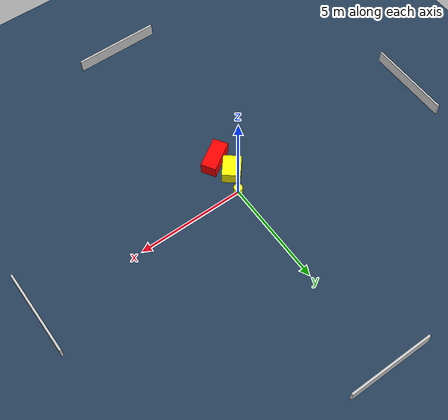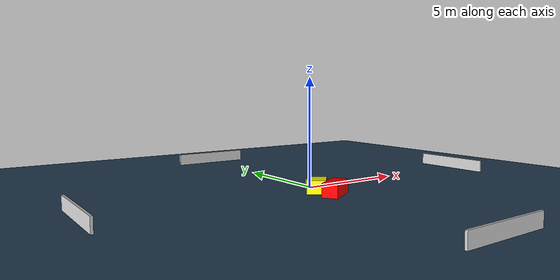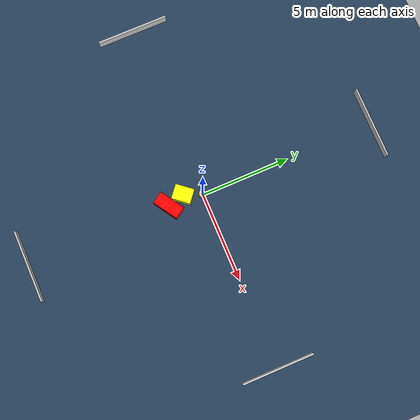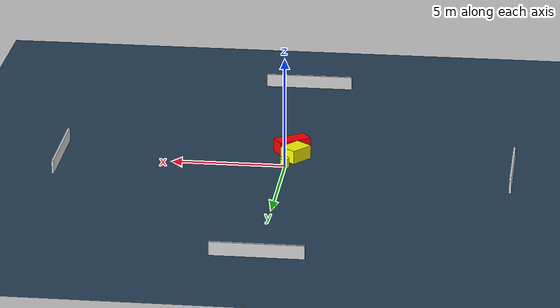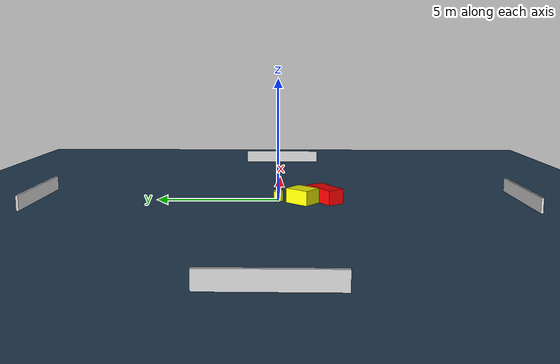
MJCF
<?xml version="1.0" ?>
<mujoco model="generated_environment">
  <option timestep="0.01" integrator="RK4" cone="elliptic"/>
  <default>
    <geom density="1"/>
  </default>
  <asset>
    <texture builtin="gradient" height="3072" name="skybox" rgb1="0.3 0.5 0.7" rgb2="0 0 0" type="skybox" width="512"/>
    <texture builtin="checker" height="300" name="groundplane" rgb1="0.2 0.3 0.4" rgb2="0.1 0.2 0.3" type="2d" width="300"/>
    <material name="groundplane" reflectance="0.2" texrepeat="5 5" texture="groundplane"/>
  </asset>
  <worldbody>
    <light dir="0 0 -1" directional="true" pos="0 0 1.5"/>
    <geom condim="3" friction="0.5 0.005 0.001" material="groundplane" name="floor" pos="0 0 0" size="0 0 0.05" type="plane"/>
    <body name="walls">
      <geom name="wall_1" condim="4" pos="-10.0 0.0 0.3" rgba="0.800000011920929 0.800000011920929 0.800000011920929 1.0" size="0.05 2.0 0.3" type="box"/>
      <geom name="wall_2" condim="4" pos="10.0 0.0 0.3" rgba="0.800000011920929 0.800000011920929 0.800000011920929 1.0" size="0.05 2.0 0.3" type="box"/>
      <geom name="wall_3" condim="4" pos="0.0 -10.0 0.3" rgba="0.800000011920929 0.800000011920929 0.800000011920929 1.0" size="2.0 0.05 0.3" type="box"/>
      <geom name="wall_4" condim="4" pos="0.0 10.0 0.3" rgba="0.800000011920929 0.800000011920929 0.800000011920929 1.0" size="2.0 0.05 0.3" type="box"/>
    </body>
    <body name="robot">
      <joint name="joint_x" type="slide" pos="0 0 0" axis="1 0 0"/>
      <joint name="joint_y" type="slide" pos="0 0 0" axis="0 1 0"/>
      <geom name="robot" type="cylinder" pos="0.0 0.0 0.2" size="0.2 0.2 0.0" mass="5.0" friction="1.0 0.005 0.0001" condim="4" rgba="1.0 1.0 0.0 1.0"/>
    </body>
    <body name="obstacle_1_movable">
      <geom name="obstacle_1_movable" condim="4" pos="-0.37290275800887174 -0.9933740201698149 0.3" euler="0 0 140.56121048403733" friction="0.0 0.005 0.001" rgba="1.0 1.0 0.0 1.0" size="0.41814479357473344 0.5276771655771346 0.3" type="box" mass="0.1"/>
      <joint type="free"/>
    </body>
    <body name="obstacle_2_static">
      <geom name="obstacle_2_static" condim="4" pos="-0.10814165891283092 -1.9290328150140128 0.3" euler="0 0 32.69481456245057" friction="0.0 0.005 0.001" rgba="1.0 0.0 0.0 1.0" size="0.7480463914790396 0.3556928532832302 0.3" type="box"/>
    </body>
  </worldbody>
  <actuator>
    <motor name="actuator_x" joint="joint_x" gear="1" ctrlrange="-1 1"/>
    <motor name="actuator_y" joint="joint_y" gear="1" ctrlrange="-1 1"/>
  </actuator>
</mujoco>
